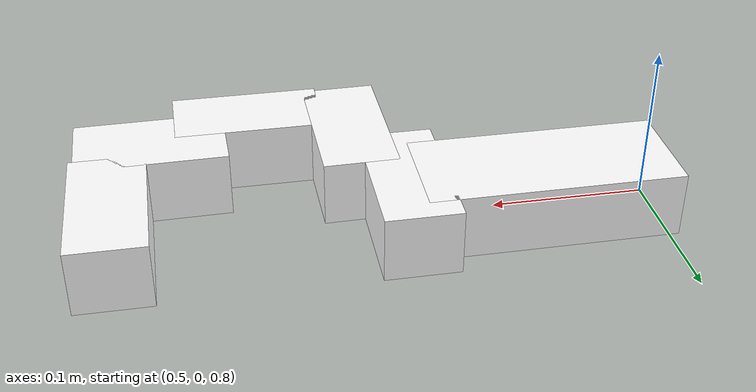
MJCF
<mujoco model="half-nut">
  <asset>
    <texture file="../textures/metal.png" name="tex-metal" type="2d" />
    <material name="metal" reflectance="0.7" texrepeat="1 1" texture="tex-metal" texuniform="true" />
  </asset>
  <worldbody>
    ,
      <body name="object0" pos="0.7 0.0 0.81" quat="1 0 0 0">
        <joint damping="0.1" limited="false" name="object0:joint" type="free" />
        <geom condim="4" density="100" friction="0.95 0.3 0.1" group="1" name="object0" pos="-0.04339000000000001 0.0 0.0" rgba="1 1 1 1" size="0.02475 0.0495 0.022000000000000002" solimp="0.998 0.998 0.001" solref="0.02 1" type="box" />
        <geom condim="4" density="100" friction="0.95 0.3 0.1" group="1" name="object1" pos="0.14339000000000001 0.0 0.0" rgba="1 1 1 1" size="0.02475 0.0495 0.022000000000000002" solimp="0.998 0.998 0.001" solref="0.02 1" type="box" />
        <geom condim="4" density="100" friction="0.95 0.3 0.1" group="1" name="object2" pos="0.05 -0.09339000000000001 0.0" rgba="1 1 1 1" size="0.0495 0.02475 0.022000000000000002" solimp="0.998 0.998 0.001" solref="0.02 1" type="box" />

        <geom axisangle="0 0 1 0.785398" condim="4" density="100" friction="0.95 0.3 0.1" group="1" name="object3" pos="-0.016 -0.066 0.0" rgba="1 1 1 1" size="0.02475 0.0495 0.022000000000000002" solimp="0.998 0.998 0.001" solref="0.02 1" type="box" />

        <geom axisangle="0 0 1 0.785398" condim="4" density="100" friction="0.95 0.3 0.1" group="1" name="object4" pos="0.116 -0.066 0.0" rgba="1 1 1 1" size="0.0495 0.027500000000000004 0.022000000000000002" solimp="0.998 0.998 0.001" solref="0.02 1" type="box" />

        <geom condim="4" density="100" friction="0.95 0.3 0.1" group="1" name="object5" pos="-0.132 0.0 0.0" rgba="1 1 1 1" size="0.08280000000000001 0.034925000000000005 0.022000000000000002" solimp="0.998 0.998 0.001" solref="0.02 1" type="box" />
      </body>

  </worldbody>
</mujoco>
